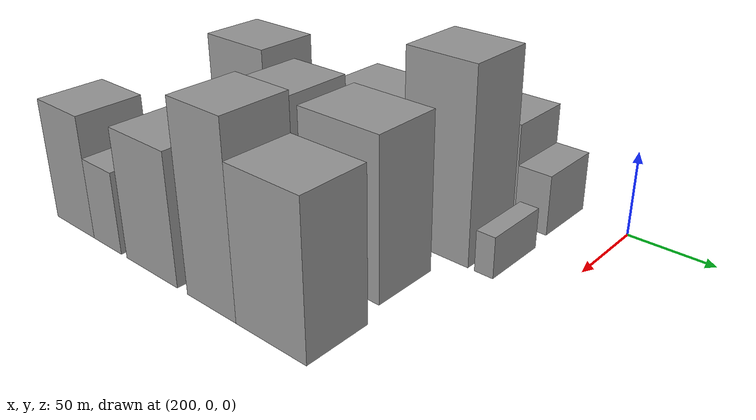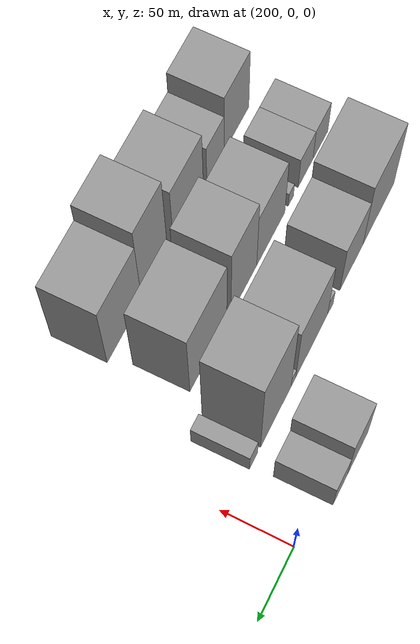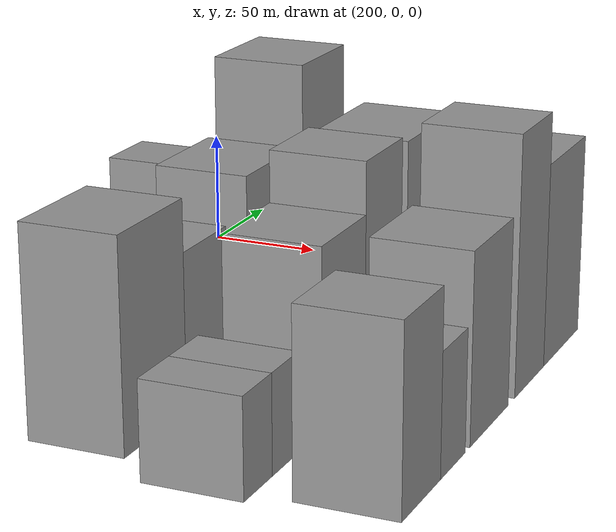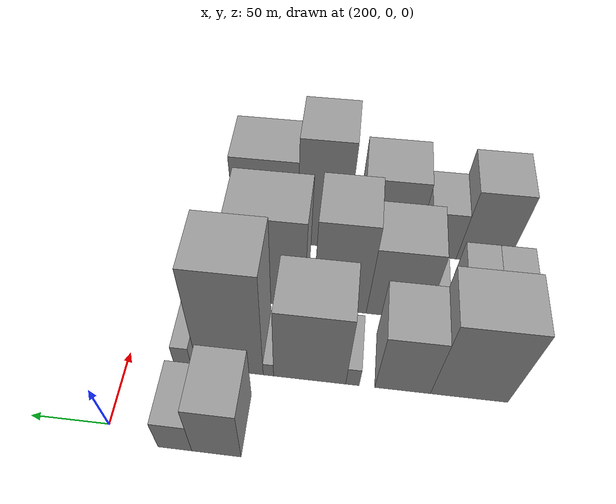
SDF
<sdf version="1.6">
 <world name="default">
  <model name="building_130">
   <static>1</static>
   <pose>210.0000 -69.2057 0 0.000000 0.000000 0.000000</pose>
   <link name="link">
    <pose>0 0 30.00 0 0 0</pose>
    <collision name="collision"><geometry><box><size>40.0000 30.0344 60.0000</size></box></geometry></collision>
    <visual name="visual">
     <cast_shadows>0</cast_shadows>
     <geometry><box><size>40.0000 30.0344 60.0000</size></box></geometry>
     <material>
      <script>
       <uri>model://grey_wall/materials/scripts</uri>
       <uri>model://grey_wall/materials/textures</uri>
       <name>vrc/grey_wall</name>
      </script>
     </material>
    </visual>
   </link>
  </model>
  <model name="building_131">
   <static>1</static>
   <pose>210.0000 -43.7849 0 0.000000 0.000000 0.000000</pose>
   <link name="link">
    <pose>0 0 18.00 0 0 0</pose>
    <collision name="collision"><geometry><box><size>40.0000 20.8071 36.0000</size></box></geometry></collision>
    <visual name="visual">
     <cast_shadows>0</cast_shadows>
     <geometry><box><size>40.0000 20.8071 36.0000</size></box></geometry>
     <material>
      <script>
       <uri>model://grey_wall/materials/scripts</uri>
       <uri>model://grey_wall/materials/textures</uri>
       <name>vrc/grey_wall</name>
      </script>
     </material>
    </visual>
   </link>
  </model>
  <model name="building_173">
   <static>1</static>
   <pose>265.0000 -221.5194 0 0.000000 0.000000 0.000000</pose>
   <link name="link">
    <pose>0 0 42.00 0 0 0</pose>
    <collision name="collision"><geometry><box><size>40.0000 48.4900 84.0000</size></box></geometry></collision>
    <visual name="visual">
     <cast_shadows>0</cast_shadows>
     <geometry><box><size>40.0000 48.4900 84.0000</size></box></geometry>
     <material>
      <script>
       <uri>model://grey_wall/materials/scripts</uri>
       <uri>model://grey_wall/materials/textures</uri>
       <name>vrc/grey_wall</name>
      </script>
     </material>
    </visual>
   </link>
  </model>
  <model name="building_174">
   <static>1</static>
   <pose>265.0000 -179.5744 0 0.000000 0.000000 0.000000</pose>
   <link name="link">
    <pose>0 0 31.50 0 0 0</pose>
    <collision name="collision"><geometry><box><size>40.0000 35.4000 63.0000</size></box></geometry></collision>
    <visual name="visual">
     <cast_shadows>0</cast_shadows>
     <geometry><box><size>40.0000 35.4000 63.0000</size></box></geometry>
     <material>
      <script>
       <uri>model://grey_wall/materials/scripts</uri>
       <uri>model://grey_wall/materials/textures</uri>
       <name>vrc/grey_wall</name>
      </script>
     </material>
    </visual>
   </link>
  </model>
  <model name="building_175">
   <static>1</static>
   <pose>265.0000 -147.5560 0 0.000000 0.000000 0.000000</pose>
   <link name="link">
    <pose>0 0 10.50 0 0 0</pose>
    <collision name="collision"><geometry><box><size>40.0000 8.6367 21.0000</size></box></geometry></collision>
    <visual name="visual">
     <cast_shadows>0</cast_shadows>
     <geometry><box><size>40.0000 8.6367 21.0000</size></box></geometry>
     <material>
      <script>
       <uri>model://grey_wall/materials/scripts</uri>
       <uri>model://grey_wall/materials/textures</uri>
       <name>vrc/grey_wall</name>
      </script>
     </material>
    </visual>
   </link>
  </model>
  <model name="building_176">
   <static>1</static>
   <pose>265.0000 -119.8663 0 0.000000 0.000000 0.000000</pose>
   <link name="link">
    <pose>0 0 39.00 0 0 0</pose>
    <collision name="collision"><geometry><box><size>40.0000 46.7428 78.0000</size></box></geometry></collision>
    <visual name="visual">
     <cast_shadows>0</cast_shadows>
     <geometry><box><size>40.0000 46.7428 78.0000</size></box></geometry>
     <material>
      <script>
       <uri>model://grey_wall/materials/scripts</uri>
       <uri>model://grey_wall/materials/textures</uri>
       <name>vrc/grey_wall</name>
      </script>
     </material>
    </visual>
   </link>
  </model>
  <model name="building_177">
   <static>1</static>
   <pose>265.0000 -93.0868 0 0.000000 0.000000 0.000000</pose>
   <link name="link">
    <pose>0 0 7.50 0 0 0</pose>
    <collision name="collision"><geometry><box><size>40.0000 6.8163 15.0000</size></box></geometry></collision>
    <visual name="visual">
     <cast_shadows>0</cast_shadows>
     <geometry><box><size>40.0000 6.8163 15.0000</size></box></geometry>
     <material>
      <script>
       <uri>model://grey_wall/materials/scripts</uri>
       <uri>model://grey_wall/materials/textures</uri>
       <name>vrc/grey_wall</name>
      </script>
     </material>
    </visual>
   </link>
  </model>
  <model name="building_178">
   <static>1</static>
   <pose>265.0000 -68.0071 0 0.000000 0.000000 0.000000</pose>
   <link name="link">
    <pose>0 0 55.50 0 0 0</pose>
    <collision name="collision"><geometry><box><size>40.0000 43.3430 111.0000</size></box></geometry></collision>
    <visual name="visual">
     <cast_shadows>0</cast_shadows>
     <geometry><box><size>40.0000 43.3430 111.0000</size></box></geometry>
     <material>
      <script>
       <uri>model://grey_wall/materials/scripts</uri>
       <uri>model://grey_wall/materials/textures</uri>
       <name>vrc/grey_wall</name>
      </script>
     </material>
    </visual>
   </link>
  </model>
  <model name="building_179">
   <static>1</static>
   <pose>265.0000 -36.6185 0 0.000000 0.000000 0.000000</pose>
   <link name="link">
    <pose>0 0 12.00 0 0 0</pose>
    <collision name="collision"><geometry><box><size>40.0000 11.4342 24.0000</size></box></geometry></collision>
    <visual name="visual">
     <cast_shadows>0</cast_shadows>
     <geometry><box><size>40.0000 11.4342 24.0000</size></box></geometry>
     <material>
      <script>
       <uri>model://grey_wall/materials/scripts</uri>
       <uri>model://grey_wall/materials/textures</uri>
       <name>vrc/grey_wall</name>
      </script>
     </material>
    </visual>
   </link>
  </model>
  <model name="building_224">
   <static>1</static>
   <pose>320.0000 -249.8744 0 0.000000 0.000000 0.000000</pose>
   <link name="link">
    <pose>0 0 19.50 0 0 0</pose>
    <collision name="collision"><geometry><box><size>40.0000 23.1083 39.0000</size></box></geometry></collision>
    <visual name="visual">
     <cast_shadows>0</cast_shadows>
     <geometry><box><size>40.0000 23.1083 39.0000</size></box></geometry>
     <material>
      <script>
       <uri>model://grey_wall/materials/scripts</uri>
       <uri>model://grey_wall/materials/textures</uri>
       <name>vrc/grey_wall</name>
      </script>
     </material>
    </visual>
   </link>
  </model>
  <model name="building_225">
   <static>1</static>
   <pose>320.0000 -226.9347 0 0.000000 0.000000 0.000000</pose>
   <link name="link">
    <pose>0 0 19.50 0 0 0</pose>
    <collision name="collision"><geometry><box><size>40.0000 22.7710 39.0000</size></box></geometry></collision>
    <visual name="visual">
     <cast_shadows>0</cast_shadows>
     <geometry><box><size>40.0000 22.7710 39.0000</size></box></geometry>
     <material>
      <script>
       <uri>model://grey_wall/materials/scripts</uri>
       <uri>model://grey_wall/materials/textures</uri>
       <name>vrc/grey_wall</name>
      </script>
     </material>
    </visual>
   </link>
  </model>
  <model name="building_226">
   <static>1</static>
   <pose>320.0000 -204.4857 0 0.000000 0.000000 0.000000</pose>
   <link name="link">
    <pose>0 0 9.00 0 0 0</pose>
    <collision name="collision"><geometry><box><size>40.0000 8.1271 18.0000</size></box></geometry></collision>
    <visual name="visual">
     <cast_shadows>0</cast_shadows>
     <geometry><box><size>40.0000 8.1271 18.0000</size></box></geometry>
     <material>
      <script>
       <uri>model://grey_wall/materials/scripts</uri>
       <uri>model://grey_wall/materials/textures</uri>
       <name>vrc/grey_wall</name>
      </script>
     </material>
    </visual>
   </link>
  </model>
  <model name="building_227">
   <static>1</static>
   <pose>320.0000 -174.5884 0 0.000000 0.000000 0.000000</pose>
   <link name="link">
    <pose>0 0 36.00 0 0 0</pose>
    <collision name="collision"><geometry><box><size>40.0000 41.6674 72.0000</size></box></geometry></collision>
    <visual name="visual">
     <cast_shadows>0</cast_shadows>
     <geometry><box><size>40.0000 41.6674 72.0000</size></box></geometry>
     <material>
      <script>
       <uri>model://grey_wall/materials/scripts</uri>
       <uri>model://grey_wall/materials/textures</uri>
       <name>vrc/grey_wall</name>
      </script>
     </material>
    </visual>
   </link>
  </model>
  <model name="building_228">
   <static>1</static>
   <pose>320.0000 -135.2681 0 0.000000 0.000000 0.000000</pose>
   <link name="link">
    <pose>0 0 46.50 0 0 0</pose>
    <collision name="collision"><geometry><box><size>40.0000 36.9733 93.0000</size></box></geometry></collision>
    <visual name="visual">
     <cast_shadows>0</cast_shadows>
     <geometry><box><size>40.0000 36.9733 93.0000</size></box></geometry>
     <material>
      <script>
       <uri>model://grey_wall/materials/scripts</uri>
       <uri>model://grey_wall/materials/textures</uri>
       <name>vrc/grey_wall</name>
      </script>
     </material>
    </visual>
   </link>
  </model>
  <model name="building_229">
   <static>1</static>
   <pose>320.0000 -84.9024 0 0.000000 0.000000 0.000000</pose>
   <link name="link">
    <pose>0 0 45.00 0 0 0</pose>
    <collision name="collision"><geometry><box><size>40.0000 51.7581 90.0000</size></box></geometry></collision>
    <visual name="visual">
     <cast_shadows>0</cast_shadows>
     <geometry><box><size>40.0000 51.7581 90.0000</size></box></geometry>
     <material>
      <script>
       <uri>model://grey_wall/materials/scripts</uri>
       <uri>model://grey_wall/materials/textures</uri>
       <name>vrc/grey_wall</name>
      </script>
     </material>
    </visual>
   </link>
  </model>
  <model name="building_277">
   <static>1</static>
   <pose>375.0000 -235.9167 0 0.000000 0.000000 0.000000</pose>
   <link name="link">
    <pose>0 0 36.00 0 0 0</pose>
    <collision name="collision"><geometry><box><size>40.0000 36.9044 72.0000</size></box></geometry></collision>
    <visual name="visual">
     <cast_shadows>0</cast_shadows>
     <geometry><box><size>40.0000 36.9044 72.0000</size></box></geometry>
     <material>
      <script>
       <uri>model://grey_wall/materials/scripts</uri>
       <uri>model://grey_wall/materials/textures</uri>
       <name>vrc/grey_wall</name>
      </script>
     </material>
    </visual>
   </link>
  </model>
  <model name="building_278">
   <static>1</static>
   <pose>375.0000 -204.7291 0 0.000000 0.000000 0.000000</pose>
   <link name="link">
    <pose>0 0 24.00 0 0 0</pose>
    <collision name="collision"><geometry><box><size>40.0000 25.4708 48.0000</size></box></geometry></collision>
    <visual name="visual">
     <cast_shadows>0</cast_shadows>
     <geometry><box><size>40.0000 25.4708 48.0000</size></box></geometry>
     <material>
      <script>
       <uri>model://grey_wall/materials/scripts</uri>
       <uri>model://grey_wall/materials/textures</uri>
       <name>vrc/grey_wall</name>
      </script>
     </material>
    </visual>
   </link>
  </model>
  <model name="building_279">
   <static>1</static>
   <pose>375.0000 -165.5159 0 0.000000 0.000000 0.000000</pose>
   <link name="link">
    <pose>0 0 37.50 0 0 0</pose>
    <collision name="collision"><geometry><box><size>40.0000 42.9554 75.0000</size></box></geometry></collision>
    <visual name="visual">
     <cast_shadows>0</cast_shadows>
     <geometry><box><size>40.0000 42.9554 75.0000</size></box></geometry>
     <material>
      <script>
       <uri>model://grey_wall/materials/scripts</uri>
       <uri>model://grey_wall/materials/textures</uri>
       <name>vrc/grey_wall</name>
      </script>
     </material>
    </visual>
   </link>
  </model>
  <model name="building_280">
   <static>1</static>
   <pose>375.0000 -117.8847 0 0.000000 0.000000 0.000000</pose>
   <link name="link">
    <pose>0 0 52.50 0 0 0</pose>
    <collision name="collision"><geometry><box><size>40.0000 36.3070 105.0000</size></box></geometry></collision>
    <visual name="visual">
     <cast_shadows>0</cast_shadows>
     <geometry><box><size>40.0000 36.3070 105.0000</size></box></geometry>
     <material>
      <script>
       <uri>model://grey_wall/materials/scripts</uri>
       <uri>model://grey_wall/materials/textures</uri>
       <name>vrc/grey_wall</name>
      </script>
     </material>
    </visual>
   </link>
  </model>
  <model name="building_281">
   <static>1</static>
   <pose>375.0000 -76.3404 0 0.000000 0.000000 0.000000</pose>
   <link name="link">
    <pose>0 0 42.00 0 0 0</pose>
    <collision name="collision"><geometry><box><size>40.0000 46.7816 84.0000</size></box></geometry></collision>
    <visual name="visual">
     <cast_shadows>0</cast_shadows>
     <geometry><box><size>40.0000 46.7816 84.0000</size></box></geometry>
     <material>
      <script>
       <uri>model://grey_wall/materials/scripts</uri>
       <uri>model://grey_wall/materials/textures</uri>
       <name>vrc/grey_wall</name>
      </script>
     </material>
    </visual>
   </link>
  </model>
 </world>
</sdf>
